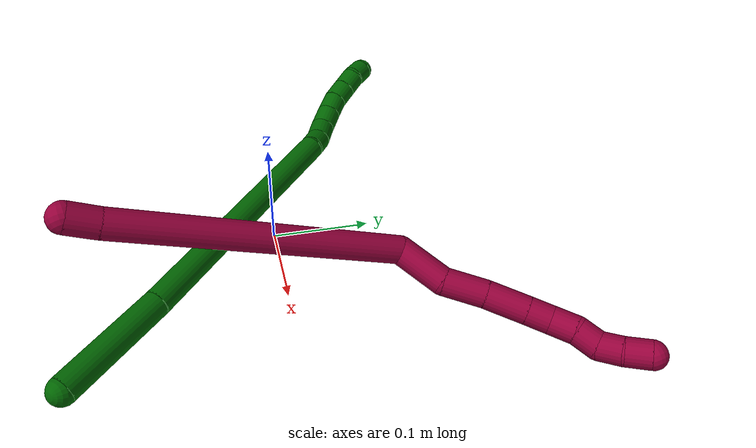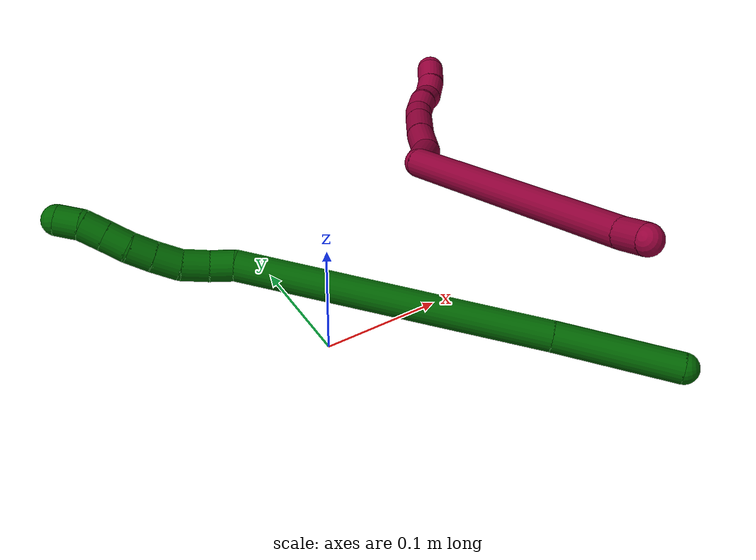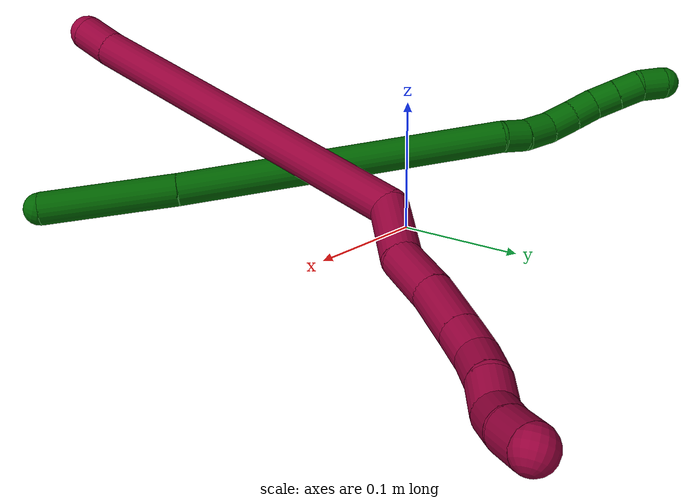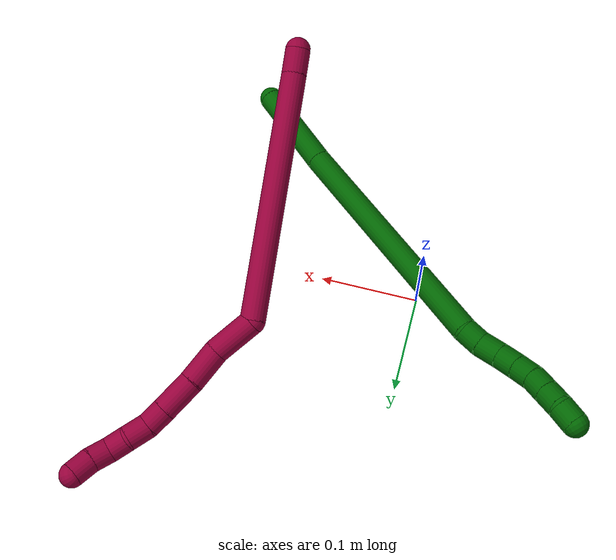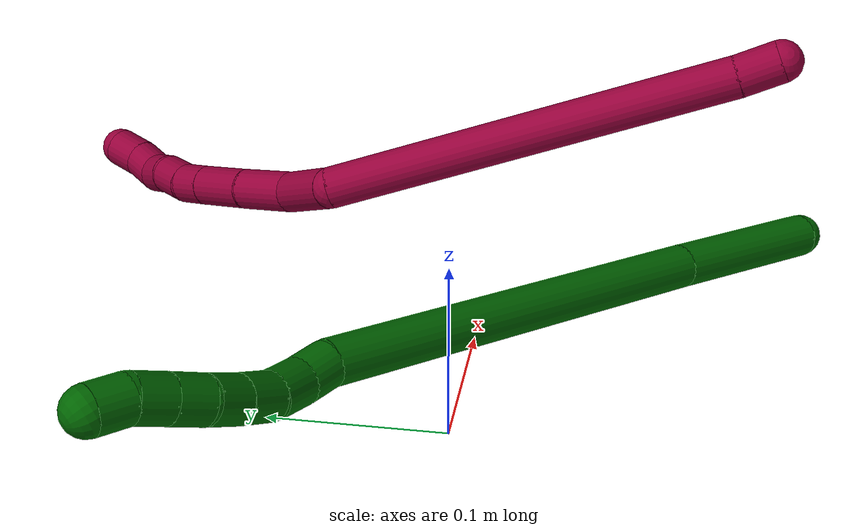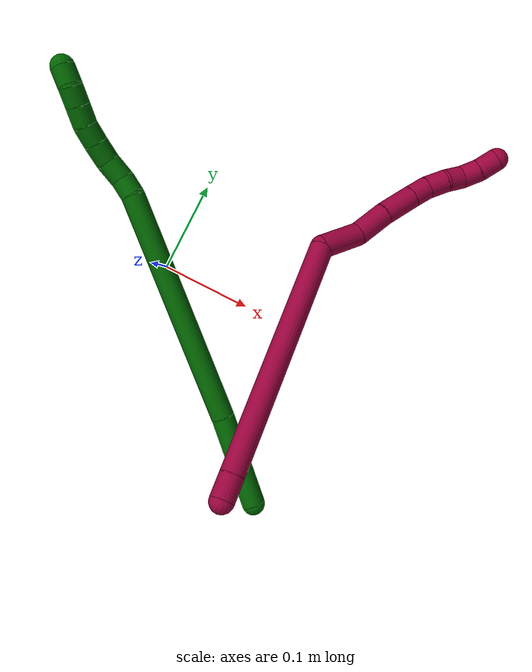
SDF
<sdf version="1.7">
 <world name="default">
  <model name="6">
   <static>0</static>
   <link name="6">
    <collision name="collision-cylinder-e_1_1_4">
     <pose>-0.009272 0.016455 -0.047463 -2.80788 -0.182528 0.995491</pose>
     <geometry><cylinder><radius>0.0125</radius><length>0.102165</length></cylinder></geometry>
     <surface>
      <friction><ode><mu>1.16</mu><mu2>1.16</mu2><slip1>0</slip1><slip2>0</slip2></ode></friction>
      <contact><ode><kp>1e+06</kp><kd>1</kd><max_vel>0</max_vel><min_depth>0.001</min_depth></ode></contact>
     </surface>
    </collision>
    <visual name="visual-cylinder-e_1_1_4">
     <pose>-0.009272 0.016455 -0.047463 -2.80788 -0.182528 0.995491</pose>
     <geometry><cylinder><radius>0.0125</radius><length>0.102165</length></cylinder></geometry>
     <material><ambient>0 0.392157 0.003922 1</ambient></material>
    </visual>
    <collision name="collision-cylinder-e_2_4_5">
     <pose>-0.046928 0.072306 -0.211514 -2.81573 -0.226671 1.21121</pose>
     <geometry><cylinder><radius>0.0125</radius><length>0.252592</length></cylinder></geometry>
     <surface>
      <friction><ode><mu>1.16</mu><mu2>1.16</mu2><slip1>0</slip1><slip2>0</slip2></ode></friction>
      <contact><ode><kp>1e+06</kp><kd>1</kd><max_vel>0</max_vel><min_depth>0.001</min_depth></ode></contact>
     </surface>
    </collision>
    <visual name="visual-cylinder-e_2_4_5">
     <pose>-0.046928 0.072306 -0.211514 -2.81573 -0.226671 1.21121</pose>
     <geometry><cylinder><radius>0.0125</radius><length>0.252592</length></cylinder></geometry>
     <material><ambient>0 0.392157 0.003922 1</ambient></material>
    </visual>
    <collision name="collision-cylinder-e_3_5_6">
     <pose>-0.078501 0.112514 -0.337547 -3.05591 -0.324646 2.62955</pose>
     <geometry><cylinder><radius>0.0125</radius><length>0.020003</length></cylinder></geometry>
     <surface>
      <friction><ode><mu>1.16</mu><mu2>1.16</mu2><slip1>0</slip1><slip2>0</slip2></ode></friction>
      <contact><ode><kp>1e+06</kp><kd>1</kd><max_vel>0</max_vel><min_depth>0.001</min_depth></ode></contact>
     </surface>
    </collision>
    <visual name="visual-cylinder-e_3_5_6">
     <pose>-0.078501 0.112514 -0.337547 -3.05591 -0.324646 2.62955</pose>
     <geometry><cylinder><radius>0.0125</radius><length>0.020003</length></cylinder></geometry>
     <material><ambient>0 0.392157 0.003922 1</ambient></material>
    </visual>
    <collision name="collision-cylinder-e_4_6_7">
     <pose>-0.087415 0.115347 -0.356783 -2.93798 -0.519967 2.40822</pose>
     <geometry><cylinder><radius>0.0125</radius><length>0.023042</length></cylinder></geometry>
     <surface>
      <friction><ode><mu>1.16</mu><mu2>1.16</mu2><slip1>0</slip1><slip2>0</slip2></ode></friction>
      <contact><ode><kp>1e+06</kp><kd>1</kd><max_vel>0</max_vel><min_depth>0.001</min_depth></ode></contact>
     </surface>
    </collision>
    <visual name="visual-cylinder-e_4_6_7">
     <pose>-0.087415 0.115347 -0.356783 -2.93798 -0.519967 2.40822</pose>
     <geometry><cylinder><radius>0.0125</radius><length>0.023042</length></cylinder></geometry>
     <material><ambient>0 0.392157 0.003922 1</ambient></material>
    </visual>
    <collision name="collision-cylinder-e_5_7_8">
     <pose>-0.098274 0.12198 -0.375095 -2.64549 -0.487341 1.55224</pose>
     <geometry><cylinder><radius>0.0125</radius><length>0.021928</length></cylinder></geometry>
     <surface>
      <friction><ode><mu>1.16</mu><mu2>1.16</mu2><slip1>0</slip1><slip2>0</slip2></ode></friction>
      <contact><ode><kp>1e+06</kp><kd>1</kd><max_vel>0</max_vel><min_depth>0.001</min_depth></ode></contact>
     </surface>
    </collision>
    <visual name="visual-cylinder-e_5_7_8">
     <pose>-0.098274 0.12198 -0.375095 -2.64549 -0.487341 1.55224</pose>
     <geometry><cylinder><radius>0.0125</radius><length>0.021928</length></cylinder></geometry>
     <material><ambient>0 0.392157 0.003922 1</ambient></material>
    </visual>
    <collision name="collision-cylinder-e_6_8_9">
     <pose>-0.107896 0.131377 -0.391306 -2.58497 -0.459982 1.37296</pose>
     <geometry><cylinder><radius>0.0125</radius><length>0.020219</length></cylinder></geometry>
     <surface>
      <friction><ode><mu>1.16</mu><mu2>1.16</mu2><slip1>0</slip1><slip2>0</slip2></ode></friction>
      <contact><ode><kp>1e+06</kp><kd>1</kd><max_vel>0</max_vel><min_depth>0.001</min_depth></ode></contact>
     </surface>
    </collision>
    <visual name="visual-cylinder-e_6_8_9">
     <pose>-0.107896 0.131377 -0.391306 -2.58497 -0.459982 1.37296</pose>
     <geometry><cylinder><radius>0.0125</radius><length>0.020219</length></cylinder></geometry>
     <material><ambient>0 0.392157 0.003922 1</ambient></material>
    </visual>
    <collision name="collision-cylinder-e_7_9_10">
     <pose>-0.115124 0.14156 -0.406962 -2.54607 -0.277413 0.85384</pose>
     <geometry><cylinder><radius>0.0125</radius><length>0.020009</length></cylinder></geometry>
     <surface>
      <friction><ode><mu>1.16</mu><mu2>1.16</mu2><slip1>0</slip1><slip2>0</slip2></ode></friction>
      <contact><ode><kp>1e+06</kp><kd>1</kd><max_vel>0</max_vel><min_depth>0.001</min_depth></ode></contact>
     </surface>
    </collision>
    <visual name="visual-cylinder-e_7_9_10">
     <pose>-0.115124 0.14156 -0.406962 -2.54607 -0.277413 0.85384</pose>
     <geometry><cylinder><radius>0.0125</radius><length>0.020009</length></cylinder></geometry>
     <material><ambient>0 0.392157 0.003922 1</ambient></material>
    </visual>
    <collision name="collision-cylinder-e_8_10_11">
     <pose>-0.120631 0.152269 -0.422939 -2.5561 -0.280369 0.875725</pose>
     <geometry><cylinder><radius>0.0125</radius><length>0.020004</length></cylinder></geometry>
     <surface>
      <friction><ode><mu>1.16</mu><mu2>1.16</mu2><slip1>0</slip1><slip2>0</slip2></ode></friction>
      <contact><ode><kp>1e+06</kp><kd>1</kd><max_vel>0</max_vel><min_depth>0.001</min_depth></ode></contact>
     </surface>
    </collision>
    <visual name="visual-cylinder-e_8_10_11">
     <pose>-0.120631 0.152269 -0.422939 -2.5561 -0.280369 0.875725</pose>
     <geometry><cylinder><radius>0.0125</radius><length>0.020004</length></cylinder></geometry>
     <material><ambient>0 0.392157 0.003922 1</ambient></material>
    </visual>
    <collision name="collision-cylinder-e_9_11_2">
     <pose>-0.125446 0.1604 -0.440343 -2.84998 -0.20572 1.22538</pose>
     <geometry><cylinder><radius>0.0125</radius><length>0.020038</length></cylinder></geometry>
     <surface>
      <friction><ode><mu>1.16</mu><mu2>1.16</mu2><slip1>0</slip1><slip2>0</slip2></ode></friction>
      <contact><ode><kp>1e+06</kp><kd>1</kd><max_vel>0</max_vel><min_depth>0.001</min_depth></ode></contact>
     </surface>
    </collision>
    <visual name="visual-cylinder-e_9_11_2">
     <pose>-0.125446 0.1604 -0.440343 -2.84998 -0.20572 1.22538</pose>
     <geometry><cylinder><radius>0.0125</radius><length>0.020038</length></cylinder></geometry>
     <material><ambient>0 0.392157 0.003922 1</ambient></material>
    </visual>
    <collision name="collision-sphere-2">
     <pose>-0.127492 0.16322 -0.449737 0 -0 0</pose>
     <geometry><sphere><radius>0.0125</radius></sphere></geometry>
     <surface>
      <friction><ode><mu>1.16</mu><mu2>1.16</mu2><slip1>0</slip1><slip2>0</slip2></ode></friction>
      <contact><ode><kp>1e+06</kp><kd>1</kd><max_vel>0</max_vel><min_depth>0.001</min_depth></ode></contact>
     </surface>
    </collision>
    <visual name="visual-sphere-2">
     <pose>-0.127492 0.16322 -0.449737 0 -0 0</pose>
     <geometry><sphere><radius>0.0125</radius></sphere></geometry>
     <material><ambient>0 0.392157 0.003922 1</ambient></material>
    </visual>
    <collision name="collision-sphere-11">
     <pose>-0.123399 0.157581 -0.430949 0 -0 0</pose>
     <geometry><sphere><radius>0.0125</radius></sphere></geometry>
     <surface>
      <friction><ode><mu>1.16</mu><mu2>1.16</mu2><slip1>0</slip1><slip2>0</slip2></ode></friction>
      <contact><ode><kp>1e+06</kp><kd>1</kd><max_vel>0</max_vel><min_depth>0.001</min_depth></ode></contact>
     </surface>
    </collision>
    <visual name="visual-sphere-11">
     <pose>-0.123399 0.157581 -0.430949 0 -0 0</pose>
     <geometry><sphere><radius>0.0125</radius></sphere></geometry>
     <material><ambient>0 0.392157 0.003922 1</ambient></material>
    </visual>
    <collision name="collision-sphere-10">
     <pose>-0.117864 0.146958 -0.414928 0 -0 0</pose>
     <geometry><sphere><radius>0.0125</radius></sphere></geometry>
     <surface>
      <friction><ode><mu>1.16</mu><mu2>1.16</mu2><slip1>0</slip1><slip2>0</slip2></ode></friction>
      <contact><ode><kp>1e+06</kp><kd>1</kd><max_vel>0</max_vel><min_depth>0.001</min_depth></ode></contact>
     </surface>
    </collision>
    <visual name="visual-sphere-10">
     <pose>-0.117864 0.146958 -0.414928 0 -0 0</pose>
     <geometry><sphere><radius>0.0125</radius></sphere></geometry>
     <material><ambient>0 0.392157 0.003922 1</ambient></material>
    </visual>
    <collision name="collision-sphere-9">
     <pose>-0.112384 0.136163 -0.398997 0 -0 0</pose>
     <geometry><sphere><radius>0.0125</radius></sphere></geometry>
     <surface>
      <friction><ode><mu>1.16</mu><mu2>1.16</mu2><slip1>0</slip1><slip2>0</slip2></ode></friction>
      <contact><ode><kp>1e+06</kp><kd>1</kd><max_vel>0</max_vel><min_depth>0.001</min_depth></ode></contact>
     </surface>
    </collision>
    <visual name="visual-sphere-9">
     <pose>-0.112384 0.136163 -0.398997 0 -0 0</pose>
     <geometry><sphere><radius>0.0125</radius></sphere></geometry>
     <material><ambient>0 0.392157 0.003922 1</ambient></material>
    </visual>
    <collision name="collision-sphere-4">
     <pose>-0.018545 0.032909 -0.094926 0 -0 0</pose>
     <geometry><sphere><radius>0.0125</radius></sphere></geometry>
     <surface>
      <friction><ode><mu>1.16</mu><mu2>1.16</mu2><slip1>0</slip1><slip2>0</slip2></ode></friction>
      <contact><ode><kp>1e+06</kp><kd>1</kd><max_vel>0</max_vel><min_depth>0.001</min_depth></ode></contact>
     </surface>
    </collision>
    <visual name="visual-sphere-4">
     <pose>-0.018545 0.032909 -0.094926 0 -0 0</pose>
     <geometry><sphere><radius>0.0125</radius></sphere></geometry>
     <material><ambient>0 0.392157 0.003922 1</ambient></material>
    </visual>
    <collision name="collision-sphere-1">
     <geometry><sphere><radius>0.0125</radius></sphere></geometry>
     <surface>
      <friction><ode><mu>1.16</mu><mu2>1.16</mu2><slip1>0</slip1><slip2>0</slip2></ode></friction>
      <contact><ode><kp>1e+06</kp><kd>1</kd><max_vel>0</max_vel><min_depth>0.001</min_depth></ode></contact>
     </surface>
    </collision>
    <visual name="visual-sphere-1">
     <geometry><sphere><radius>0.0125</radius></sphere></geometry>
     <material><ambient>0 0.392157 0.003922 1</ambient></material>
    </visual>
    <collision name="collision-sphere-8">
     <pose>-0.103408 0.126591 -0.383614 0 -0 0</pose>
     <geometry><sphere><radius>0.0125</radius></sphere></geometry>
     <surface>
      <friction><ode><mu>1.16</mu><mu2>1.16</mu2><slip1>0</slip1><slip2>0</slip2></ode></friction>
      <contact><ode><kp>1e+06</kp><kd>1</kd><max_vel>0</max_vel><min_depth>0.001</min_depth></ode></contact>
     </surface>
    </collision>
    <visual name="visual-sphere-8">
     <pose>-0.103408 0.126591 -0.383614 0 -0 0</pose>
     <geometry><sphere><radius>0.0125</radius></sphere></geometry>
     <material><ambient>0 0.392157 0.003922 1</ambient></material>
    </visual>
    <collision name="collision-sphere-5">
     <pose>-0.075311 0.111703 -0.328103 0 -0 0</pose>
     <geometry><sphere><radius>0.0125</radius></sphere></geometry>
     <surface>
      <friction><ode><mu>1.16</mu><mu2>1.16</mu2><slip1>0</slip1><slip2>0</slip2></ode></friction>
      <contact><ode><kp>1e+06</kp><kd>1</kd><max_vel>0</max_vel><min_depth>0.001</min_depth></ode></contact>
     </surface>
    </collision>
    <visual name="visual-sphere-5">
     <pose>-0.075311 0.111703 -0.328103 0 -0 0</pose>
     <geometry><sphere><radius>0.0125</radius></sphere></geometry>
     <material><ambient>0 0.392157 0.003922 1</ambient></material>
    </visual>
    <collision name="collision-sphere-6">
     <pose>-0.081691 0.113325 -0.346992 0 -0 0</pose>
     <geometry><sphere><radius>0.0125</radius></sphere></geometry>
     <surface>
      <friction><ode><mu>1.16</mu><mu2>1.16</mu2><slip1>0</slip1><slip2>0</slip2></ode></friction>
      <contact><ode><kp>1e+06</kp><kd>1</kd><max_vel>0</max_vel><min_depth>0.001</min_depth></ode></contact>
     </surface>
    </collision>
    <visual name="visual-sphere-6">
     <pose>-0.081691 0.113325 -0.346992 0 -0 0</pose>
     <geometry><sphere><radius>0.0125</radius></sphere></geometry>
     <material><ambient>0 0.392157 0.003922 1</ambient></material>
    </visual>
    <collision name="collision-sphere-7">
     <pose>-0.09314 0.117369 -0.366575 0 -0 0</pose>
     <geometry><sphere><radius>0.0125</radius></sphere></geometry>
     <surface>
      <friction><ode><mu>1.16</mu><mu2>1.16</mu2><slip1>0</slip1><slip2>0</slip2></ode></friction>
      <contact><ode><kp>1e+06</kp><kd>1</kd><max_vel>0</max_vel><min_depth>0.001</min_depth></ode></contact>
     </surface>
    </collision>
    <visual name="visual-sphere-7">
     <pose>-0.09314 0.117369 -0.366575 0 -0 0</pose>
     <geometry><sphere><radius>0.0125</radius></sphere></geometry>
     <material><ambient>0 0.392157 0.003922 1</ambient></material>
    </visual>
    <inertial>
     <pose>-0.055904 0.078554 -0.229625 0 -0 0</pose>
     <mass>0.5</mass>
     <inertia>
      <ixx>0.001822</ixx>
      <ixy>0</ixy>
      <ixz>0</ixz>
      <iyy>0.00093</iyy>
      <iyz>0</iyz>
      <izz>-0.000166</izz>
     </inertia>
    </inertial>
   </link>
   <pose>0.205891 -0.186364 0.028574 1.26445 0.505084 0.649222</pose>
  </model>
  <model name="8">
   <static>0</static>
   <link name="8">
    <collision name="collision-cylinder-e_1_1_4">
     <pose>-0.001432 0.011754 -0.005067 -1.97784 -0.111401 0.169111</pose>
     <geometry><cylinder><radius>0.0125</radius><length>0.025759</length></cylinder></geometry>
     <surface>
      <friction><ode><mu>1.16</mu><mu2>1.16</mu2><slip1>0</slip1><slip2>0</slip2></ode></friction>
      <contact><ode><kp>1e+06</kp><kd>1</kd><max_vel>0</max_vel><min_depth>0.001</min_depth></ode></contact>
     </surface>
    </collision>
    <visual name="visual-cylinder-e_1_1_4">
     <pose>-0.001432 0.011754 -0.005067 -1.97784 -0.111401 0.169111</pose>
     <geometry><cylinder><radius>0.0125</radius><length>0.025759</length></cylinder></geometry>
     <material><ambient>0.584314 0 0.227451 1</ambient></material>
    </visual>
    <collision name="collision-cylinder-e_2_4_5">
     <pose>-0.009689 0.139451 -0.053005 -1.92496 -0.055156 0.079178</pose>
     <geometry><cylinder><radius>0.0125</radius><length>0.247605</length></cylinder></geometry>
     <surface>
      <friction><ode><mu>1.16</mu><mu2>1.16</mu2><slip1>0</slip1><slip2>0</slip2></ode></friction>
      <contact><ode><kp>1e+06</kp><kd>1</kd><max_vel>0</max_vel><min_depth>0.001</min_depth></ode></contact>
     </surface>
    </collision>
    <visual name="visual-cylinder-e_2_4_5">
     <pose>-0.009689 0.139451 -0.053005 -1.92496 -0.055156 0.079178</pose>
     <geometry><cylinder><radius>0.0125</radius><length>0.247605</length></cylinder></geometry>
     <material><ambient>0.584314 0 0.227451 1</ambient></material>
    </visual>
    <collision name="collision-cylinder-e_3_5_6">
     <pose>-0.010271 0.266068 -0.115108 -2.63494 0.27654 -0.986426</pose>
     <geometry><cylinder><radius>0.0125</radius><length>0.045732</length></cylinder></geometry>
     <surface>
      <friction><ode><mu>1.16</mu><mu2>1.16</mu2><slip1>0</slip1><slip2>0</slip2></ode></friction>
      <contact><ode><kp>1e+06</kp><kd>1</kd><max_vel>0</max_vel><min_depth>0.001</min_depth></ode></contact>
     </surface>
    </collision>
    <visual name="visual-cylinder-e_3_5_6">
     <pose>-0.010271 0.266068 -0.115108 -2.63494 0.27654 -0.986426</pose>
     <geometry><cylinder><radius>0.0125</radius><length>0.045732</length></cylinder></geometry>
     <material><ambient>0.584314 0 0.227451 1</ambient></material>
    </visual>
    <collision name="collision-cylinder-e_4_6_7">
     <pose>0.002242 0.290352 -0.145753 -2.26851 0.339349 -0.703834</pose>
     <geometry><cylinder><radius>0.0125</radius><length>0.037669</length></cylinder></geometry>
     <surface>
      <friction><ode><mu>1.16</mu><mu2>1.16</mu2><slip1>0</slip1><slip2>0</slip2></ode></friction>
      <contact><ode><kp>1e+06</kp><kd>1</kd><max_vel>0</max_vel><min_depth>0.001</min_depth></ode></contact>
     </surface>
    </collision>
    <visual name="visual-cylinder-e_4_6_7">
     <pose>0.002242 0.290352 -0.145753 -2.26851 0.339349 -0.703834</pose>
     <geometry><cylinder><radius>0.0125</radius><length>0.037669</length></cylinder></geometry>
     <material><ambient>0.584314 0 0.227451 1</ambient></material>
    </visual>
    <collision name="collision-cylinder-e_5_7_8">
     <pose>0.015123 0.315972 -0.169558 -2.37196 0.365842 -0.856918</pose>
     <geometry><cylinder><radius>0.0125</radius><length>0.036965</length></cylinder></geometry>
     <surface>
      <friction><ode><mu>1.16</mu><mu2>1.16</mu2><slip1>0</slip1><slip2>0</slip2></ode></friction>
      <contact><ode><kp>1e+06</kp><kd>1</kd><max_vel>0</max_vel><min_depth>0.001</min_depth></ode></contact>
     </surface>
    </collision>
    <visual name="visual-cylinder-e_5_7_8">
     <pose>0.015123 0.315972 -0.169558 -2.37196 0.365842 -0.856918</pose>
     <geometry><cylinder><radius>0.0125</radius><length>0.036965</length></cylinder></geometry>
     <material><ambient>0.584314 0 0.227451 1</ambient></material>
    </visual>
    <collision name="collision-cylinder-e_6_8_9">
     <pose>0.025644 0.334683 -0.189126 -2.39018 0.378975 -0.905142</pose>
     <geometry><cylinder><radius>0.0125</radius><length>0.021131</length></cylinder></geometry>
     <surface>
      <friction><ode><mu>1.16</mu><mu2>1.16</mu2><slip1>0</slip1><slip2>0</slip2></ode></friction>
      <contact><ode><kp>1e+06</kp><kd>1</kd><max_vel>0</max_vel><min_depth>0.001</min_depth></ode></contact>
     </surface>
    </collision>
    <visual name="visual-cylinder-e_6_8_9">
     <pose>0.025644 0.334683 -0.189126 -2.39018 0.378975 -0.905142</pose>
     <geometry><cylinder><radius>0.0125</radius><length>0.021131</length></cylinder></geometry>
     <material><ambient>0.584314 0 0.227451 1</ambient></material>
    </visual>
    <collision name="collision-cylinder-e_7_9_10">
     <pose>0.035849 0.346917 -0.203779 -2.50471 0.594926 -1.49821</pose>
     <geometry><cylinder><radius>0.0125</radius><length>0.022468</length></cylinder></geometry>
     <surface>
      <friction><ode><mu>1.16</mu><mu2>1.16</mu2><slip1>0</slip1><slip2>0</slip2></ode></friction>
      <contact><ode><kp>1e+06</kp><kd>1</kd><max_vel>0</max_vel><min_depth>0.001</min_depth></ode></contact>
     </surface>
    </collision>
    <visual name="visual-cylinder-e_7_9_10">
     <pose>0.035849 0.346917 -0.203779 -2.50471 0.594926 -1.49821</pose>
     <geometry><cylinder><radius>0.0125</radius><length>0.022468</length></cylinder></geometry>
     <material><ambient>0.584314 0 0.227451 1</ambient></material>
    </visual>
    <collision name="collision-cylinder-e_8_10_11">
     <pose>0.045993 0.356518 -0.219864 -2.70003 0.384209 -1.42812</pose>
     <geometry><cylinder><radius>0.0125</radius><length>0.020532</length></cylinder></geometry>
     <surface>
      <friction><ode><mu>1.16</mu><mu2>1.16</mu2><slip1>0</slip1><slip2>0</slip2></ode></friction>
      <contact><ode><kp>1e+06</kp><kd>1</kd><max_vel>0</max_vel><min_depth>0.001</min_depth></ode></contact>
     </surface>
    </collision>
    <visual name="visual-cylinder-e_8_10_11">
     <pose>0.045993 0.356518 -0.219864 -2.70003 0.384209 -1.42812</pose>
     <geometry><cylinder><radius>0.0125</radius><length>0.020532</length></cylinder></geometry>
     <material><ambient>0.584314 0 0.227451 1</ambient></material>
    </visual>
    <collision name="collision-cylinder-e_9_11_12">
     <pose>0.057132 0.36565 -0.233621 -2.36472 0.789911 -1.58927</pose>
     <geometry><cylinder><radius>0.0125</radius><length>0.02053</length></cylinder></geometry>
     <surface>
      <friction><ode><mu>1.16</mu><mu2>1.16</mu2><slip1>0</slip1><slip2>0</slip2></ode></friction>
      <contact><ode><kp>1e+06</kp><kd>1</kd><max_vel>0</max_vel><min_depth>0.001</min_depth></ode></contact>
     </surface>
    </collision>
    <visual name="visual-cylinder-e_9_11_12">
     <pose>0.057132 0.36565 -0.233621 -2.36472 0.789911 -1.58927</pose>
     <geometry><cylinder><radius>0.0125</radius><length>0.02053</length></cylinder></geometry>
     <material><ambient>0.584314 0 0.227451 1</ambient></material>
    </visual>
    <collision name="collision-cylinder-e_10_12_2">
     <pose>0.071189 0.377683 -0.243507 -2.16751 0.676708 -1.17292</pose>
     <geometry><cylinder><radius>0.0125</radius><length>0.021608</length></cylinder></geometry>
     <surface>
      <friction><ode><mu>1.16</mu><mu2>1.16</mu2><slip1>0</slip1><slip2>0</slip2></ode></friction>
      <contact><ode><kp>1e+06</kp><kd>1</kd><max_vel>0</max_vel><min_depth>0.001</min_depth></ode></contact>
     </surface>
    </collision>
    <visual name="visual-cylinder-e_10_12_2">
     <pose>0.071189 0.377683 -0.243507 -2.16751 0.676708 -1.17292</pose>
     <geometry><cylinder><radius>0.0125</radius><length>0.021608</length></cylinder></geometry>
     <material><ambient>0.584314 0 0.227451 1</ambient></material>
    </visual>
    <collision name="collision-sphere-2">
     <pose>0.077955 0.384651 -0.24824 0 -0 0</pose>
     <geometry><sphere><radius>0.0125</radius></sphere></geometry>
     <surface>
      <friction><ode><mu>1.16</mu><mu2>1.16</mu2><slip1>0</slip1><slip2>0</slip2></ode></friction>
      <contact><ode><kp>1e+06</kp><kd>1</kd><max_vel>0</max_vel><min_depth>0.001</min_depth></ode></contact>
     </surface>
    </collision>
    <visual name="visual-sphere-2">
     <pose>0.077955 0.384651 -0.24824 0 -0 0</pose>
     <geometry><sphere><radius>0.0125</radius></sphere></geometry>
     <material><ambient>0.584314 0 0.227451 1</ambient></material>
    </visual>
    <collision name="collision-sphere-12">
     <pose>0.064423 0.370716 -0.238774 0 -0 0</pose>
     <geometry><sphere><radius>0.0125</radius></sphere></geometry>
     <surface>
      <friction><ode><mu>1.16</mu><mu2>1.16</mu2><slip1>0</slip1><slip2>0</slip2></ode></friction>
      <contact><ode><kp>1e+06</kp><kd>1</kd><max_vel>0</max_vel><min_depth>0.001</min_depth></ode></contact>
     </surface>
    </collision>
    <visual name="visual-sphere-12">
     <pose>0.064423 0.370716 -0.238774 0 -0 0</pose>
     <geometry><sphere><radius>0.0125</radius></sphere></geometry>
     <material><ambient>0.584314 0 0.227451 1</ambient></material>
    </visual>
    <collision name="collision-sphere-11">
     <pose>0.049841 0.360585 -0.228469 0 -0 0</pose>
     <geometry><sphere><radius>0.0125</radius></sphere></geometry>
     <surface>
      <friction><ode><mu>1.16</mu><mu2>1.16</mu2><slip1>0</slip1><slip2>0</slip2></ode></friction>
      <contact><ode><kp>1e+06</kp><kd>1</kd><max_vel>0</max_vel><min_depth>0.001</min_depth></ode></contact>
     </surface>
    </collision>
    <visual name="visual-sphere-11">
     <pose>0.049841 0.360585 -0.228469 0 -0 0</pose>
     <geometry><sphere><radius>0.0125</radius></sphere></geometry>
     <material><ambient>0.584314 0 0.227451 1</ambient></material>
    </visual>
    <collision name="collision-sphere-10">
     <pose>0.042145 0.35245 -0.211259 0 -0 0</pose>
     <geometry><sphere><radius>0.0125</radius></sphere></geometry>
     <surface>
      <friction><ode><mu>1.16</mu><mu2>1.16</mu2><slip1>0</slip1><slip2>0</slip2></ode></friction>
      <contact><ode><kp>1e+06</kp><kd>1</kd><max_vel>0</max_vel><min_depth>0.001</min_depth></ode></contact>
     </surface>
    </collision>
    <visual name="visual-sphere-10">
     <pose>0.042145 0.35245 -0.211259 0 -0 0</pose>
     <geometry><sphere><radius>0.0125</radius></sphere></geometry>
     <material><ambient>0.584314 0 0.227451 1</ambient></material>
    </visual>
    <collision name="collision-sphere-9">
     <pose>0.029553 0.341384 -0.196299 0 -0 0</pose>
     <geometry><sphere><radius>0.0125</radius></sphere></geometry>
     <surface>
      <friction><ode><mu>1.16</mu><mu2>1.16</mu2><slip1>0</slip1><slip2>0</slip2></ode></friction>
      <contact><ode><kp>1e+06</kp><kd>1</kd><max_vel>0</max_vel><min_depth>0.001</min_depth></ode></contact>
     </surface>
    </collision>
    <visual name="visual-sphere-9">
     <pose>0.029553 0.341384 -0.196299 0 -0 0</pose>
     <geometry><sphere><radius>0.0125</radius></sphere></geometry>
     <material><ambient>0.584314 0 0.227451 1</ambient></material>
    </visual>
    <collision name="collision-sphere-4">
     <pose>-0.002864 0.023508 -0.010135 0 -0 0</pose>
     <geometry><sphere><radius>0.0125</radius></sphere></geometry>
     <surface>
      <friction><ode><mu>1.16</mu><mu2>1.16</mu2><slip1>0</slip1><slip2>0</slip2></ode></friction>
      <contact><ode><kp>1e+06</kp><kd>1</kd><max_vel>0</max_vel><min_depth>0.001</min_depth></ode></contact>
     </surface>
    </collision>
    <visual name="visual-sphere-4">
     <pose>-0.002864 0.023508 -0.010135 0 -0 0</pose>
     <geometry><sphere><radius>0.0125</radius></sphere></geometry>
     <material><ambient>0.584314 0 0.227451 1</ambient></material>
    </visual>
    <collision name="collision-sphere-1">
     <geometry><sphere><radius>0.0125</radius></sphere></geometry>
     <surface>
      <friction><ode><mu>1.16</mu><mu2>1.16</mu2><slip1>0</slip1><slip2>0</slip2></ode></friction>
      <contact><ode><kp>1e+06</kp><kd>1</kd><max_vel>0</max_vel><min_depth>0.001</min_depth></ode></contact>
     </surface>
    </collision>
    <visual name="visual-sphere-1">
     <geometry><sphere><radius>0.0125</radius></sphere></geometry>
     <material><ambient>0.584314 0 0.227451 1</ambient></material>
    </visual>
    <collision name="collision-sphere-8">
     <pose>0.021735 0.327982 -0.181953 0 -0 0</pose>
     <geometry><sphere><radius>0.0125</radius></sphere></geometry>
     <surface>
      <friction><ode><mu>1.16</mu><mu2>1.16</mu2><slip1>0</slip1><slip2>0</slip2></ode></friction>
      <contact><ode><kp>1e+06</kp><kd>1</kd><max_vel>0</max_vel><min_depth>0.001</min_depth></ode></contact>
     </surface>
    </collision>
    <visual name="visual-sphere-8">
     <pose>0.021735 0.327982 -0.181953 0 -0 0</pose>
     <geometry><sphere><radius>0.0125</radius></sphere></geometry>
     <material><ambient>0.584314 0 0.227451 1</ambient></material>
    </visual>
    <collision name="collision-sphere-5">
     <pose>-0.016514 0.255393 -0.095875 0 -0 0</pose>
     <geometry><sphere><radius>0.0125</radius></sphere></geometry>
     <surface>
      <friction><ode><mu>1.16</mu><mu2>1.16</mu2><slip1>0</slip1><slip2>0</slip2></ode></friction>
      <contact><ode><kp>1e+06</kp><kd>1</kd><max_vel>0</max_vel><min_depth>0.001</min_depth></ode></contact>
     </surface>
    </collision>
    <visual name="visual-sphere-5">
     <pose>-0.016514 0.255393 -0.095875 0 -0 0</pose>
     <geometry><sphere><radius>0.0125</radius></sphere></geometry>
     <material><ambient>0.584314 0 0.227451 1</ambient></material>
    </visual>
    <collision name="collision-sphere-6">
     <pose>-0.004027 0.276742 -0.134342 0 -0 0</pose>
     <geometry><sphere><radius>0.0125</radius></sphere></geometry>
     <surface>
      <friction><ode><mu>1.16</mu><mu2>1.16</mu2><slip1>0</slip1><slip2>0</slip2></ode></friction>
      <contact><ode><kp>1e+06</kp><kd>1</kd><max_vel>0</max_vel><min_depth>0.001</min_depth></ode></contact>
     </surface>
    </collision>
    <visual name="visual-sphere-6">
     <pose>-0.004027 0.276742 -0.134342 0 -0 0</pose>
     <geometry><sphere><radius>0.0125</radius></sphere></geometry>
     <material><ambient>0.584314 0 0.227451 1</ambient></material>
    </visual>
    <collision name="collision-sphere-7">
     <pose>0.008512 0.303962 -0.157163 0 -0 0</pose>
     <geometry><sphere><radius>0.0125</radius></sphere></geometry>
     <surface>
      <friction><ode><mu>1.16</mu><mu2>1.16</mu2><slip1>0</slip1><slip2>0</slip2></ode></friction>
      <contact><ode><kp>1e+06</kp><kd>1</kd><max_vel>0</max_vel><min_depth>0.001</min_depth></ode></contact>
     </surface>
    </collision>
    <visual name="visual-sphere-7">
     <pose>0.008512 0.303962 -0.157163 0 -0 0</pose>
     <geometry><sphere><radius>0.0125</radius></sphere></geometry>
     <material><ambient>0.584314 0 0.227451 1</ambient></material>
    </visual>
    <inertial>
     <pose>0.005482 0.214942 -0.106848 0 -0 0</pose>
     <mass>0.5</mass>
     <inertia>
      <ixx>0.001371</ixx>
      <ixy>0</ixy>
      <ixz>0</ixz>
      <iyy>-0.000333</iyy>
      <iyz>0</iyz>
      <izz>-0.001173</izz>
     </inertia>
    </inertial>
   </link>
   <pose>0.168063 -0.163909 0.156759 -0.050516 -0.796621 0.348364</pose>
  </model>
 </world>
</sdf>
